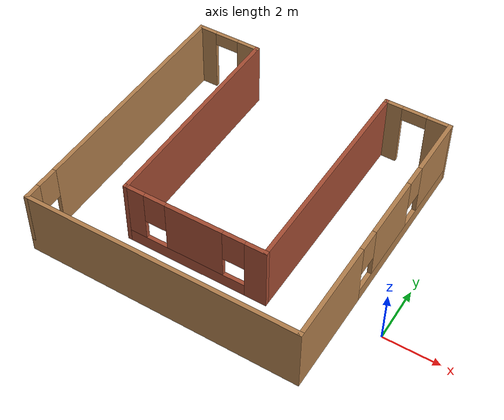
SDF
<?xml version='1.0'?>
<sdf version='1.6'>
  <model name='mybuilding'>
    <pose frame=''>-6.26715 2.10323 0 0 -0 0</pose>
    <link name='Wall_100'>
      <collision name='Wall_100_Collision'>
        <geometry>
          <box>
            <size>8 0.15 2.5</size>
          </box>
        </geometry>
        <pose frame=''>0 0 1.25 0 -0 0</pose>
      </collision>
      <visual name='Wall_100_Visual'>
        <pose frame=''>0 0 1.25 0 -0 0</pose>
        <geometry>
          <box>
            <size>8 0.15 2.5</size>
          </box>
        </geometry>
        <material>
          <script>
            <uri>file://media/materials/scripts/gazebo.material</uri>
            <name>Gazebo/Bricks</name>
          </script>
          <ambient>1 1 1 1</ambient>
        </material>
        <meta>
          <layer>0</layer>
        </meta>
      </visual>
      <pose frame=''>2.575 1 0 0 -0 -1.5708</pose>
    </link>
    <link name='Wall_101'>
      <pose frame=''>0 -2.925 0 0 -0 3.14159</pose>
      <visual name='Wall_101_Visual_0'>
        <pose frame=''>-2.25045 0 1.25 0 -0 0</pose>
        <geometry>
          <box>
            <size>0.799108 0.15 2.5</size>
          </box>
        </geometry>
        <material>
          <script>
            <uri>file://media/materials/scripts/gazebo.material</uri>
            <name>Gazebo/Bricks</name>
          </script>
          <ambient>1 1 1 1</ambient>
        </material>
        <meta>
          <layer>0</layer>
        </meta>
      </visual>
      <collision name='Wall_101_Collision_0'>
        <geometry>
          <box>
            <size>0.799108 0.15 2.5</size>
          </box>
        </geometry>
        <pose frame=''>-2.25045 0 1.25 0 -0 0</pose>
      </collision>
      <visual name='Wall_101_Visual_1'>
        <pose frame=''>0.399554 0 0.25 0 -0 0</pose>
        <geometry>
          <box>
            <size>4.50089 0.15 0.5</size>
          </box>
        </geometry>
        <material>
          <script>
            <uri>file://media/materials/scripts/gazebo.material</uri>
            <name>Gazebo/Bricks</name>
          </script>
          <ambient>1 1 1 1</ambient>
        </material>
        <meta>
          <layer>0</layer>
        </meta>
      </visual>
      <collision name='Wall_101_Collision_1'>
        <geometry>
          <box>
            <size>4.50089 0.15 0.5</size>
          </box>
        </geometry>
        <pose frame=''>0.399554 0 0.25 0 -0 0</pose>
      </collision>
      <visual name='Wall_101_Visual_2'>
        <pose frame=''>0.007743 0 1.5 0 -0 0</pose>
        <geometry>
          <box>
            <size>2.11727 0.15 2</size>
          </box>
        </geometry>
        <material>
          <script>
            <uri>file://media/materials/scripts/gazebo.material</uri>
            <name>Gazebo/Bricks</name>
          </script>
          <ambient>1 1 1 1</ambient>
        </material>
        <meta>
          <layer>0</layer>
        </meta>
      </visual>
      <collision name='Wall_101_Collision_2'>
        <geometry>
          <box>
            <size>2.11727 0.15 2</size>
          </box>
        </geometry>
        <pose frame=''>0.007743 0 1.5 0 -0 0</pose>
      </collision>
      <visual name='Wall_101_Visual_3'>
        <pose frame=''>2.25819 0 1.5 0 -0 0</pose>
        <geometry>
          <box>
            <size>0.783621 0.15 2</size>
          </box>
        </geometry>
        <material>
          <script>
            <uri>file://media/materials/scripts/gazebo.material</uri>
            <name>Gazebo/Bricks</name>
          </script>
          <ambient>1 1 1 1</ambient>
        </material>
        <meta>
          <layer>0</layer>
        </meta>
      </visual>
      <collision name='Wall_101_Collision_3'>
        <geometry>
          <box>
            <size>0.783621 0.15 2</size>
          </box>
        </geometry>
        <pose frame=''>2.25819 0 1.5 0 -0 0</pose>
      </collision>
      <visual name='Wall_101_Visual_4'>
        <pose frame=''>-1.45089 0 1.9 0 -0 0</pose>
        <geometry>
          <box>
            <size>0.8 0.15 1.2</size>
          </box>
        </geometry>
        <material>
          <script>
            <uri>file://media/materials/scripts/gazebo.material</uri>
            <name>Gazebo/Bricks</name>
          </script>
          <ambient>1 1 1 1</ambient>
        </material>
        <meta>
          <layer>0</layer>
        </meta>
      </visual>
      <collision name='Wall_101_Collision_4'>
        <geometry>
          <box>
            <size>0.8 0.15 1.2</size>
          </box>
        </geometry>
        <pose frame=''>-1.45089 0 1.9 0 -0 0</pose>
      </collision>
      <visual name='Wall_101_Visual_5'>
        <pose frame=''>1.46638 0 1.9 0 -0 0</pose>
        <geometry>
          <box>
            <size>0.8 0.15 1.2</size>
          </box>
        </geometry>
        <material>
          <script>
            <uri>file://media/materials/scripts/gazebo.material</uri>
            <name>Gazebo/Bricks</name>
          </script>
          <ambient>1 1 1 1</ambient>
        </material>
        <meta>
          <layer>0</layer>
        </meta>
      </visual>
      <collision name='Wall_101_Collision_5'>
        <geometry>
          <box>
            <size>0.8 0.15 1.2</size>
          </box>
        </geometry>
        <pose frame=''>1.46638 0 1.9 0 -0 0</pose>
      </collision>
    </link>
    <link name='Wall_92'>
      <pose frame=''>-4.925 0 0 0 -0 -1.5708</pose>
      <visual name='Wall_92_Visual_0'>
        <pose frame=''>-0.711405 0 1.25 0 -0 0</pose>
        <geometry>
          <box>
            <size>8.57719 0.15 2.5</size>
          </box>
        </geometry>
        <material>
          <script>
            <uri>file://media/materials/scripts/gazebo.material</uri>
            <name>Gazebo/Wood</name>
          </script>
          <ambient>1 1 1 1</ambient>
        </material>
        <meta>
          <layer>0</layer>
        </meta>
      </visual>
      <collision name='Wall_92_Collision_0'>
        <geometry>
          <box>
            <size>8.57719 0.15 2.5</size>
          </box>
        </geometry>
        <pose frame=''>-0.711405 0 1.25 0 -0 0</pose>
      </collision>
      <visual name='Wall_92_Visual_1'>
        <pose frame=''>4.28859 0 0.25 0 -0 0</pose>
        <geometry>
          <box>
            <size>1.42281 0.15 0.5</size>
          </box>
        </geometry>
        <material>
          <script>
            <uri>file://media/materials/scripts/gazebo.material</uri>
            <name>Gazebo/Wood</name>
          </script>
          <ambient>1 1 1 1</ambient>
        </material>
        <meta>
          <layer>0</layer>
        </meta>
      </visual>
      <collision name='Wall_92_Collision_1'>
        <geometry>
          <box>
            <size>1.42281 0.15 0.5</size>
          </box>
        </geometry>
        <pose frame=''>4.28859 0 0.25 0 -0 0</pose>
      </collision>
      <visual name='Wall_92_Visual_2'>
        <pose frame=''>4.6886 0 1.5 0 -0 0</pose>
        <geometry>
          <box>
            <size>0.622811 0.15 2</size>
          </box>
        </geometry>
        <material>
          <script>
            <uri>file://media/materials/scripts/gazebo.material</uri>
            <name>Gazebo/Wood</name>
          </script>
          <ambient>1 1 1 1</ambient>
        </material>
        <meta>
          <layer>0</layer>
        </meta>
      </visual>
      <collision name='Wall_92_Collision_2'>
        <geometry>
          <box>
            <size>0.622811 0.15 2</size>
          </box>
        </geometry>
        <pose frame=''>4.6886 0 1.5 0 -0 0</pose>
      </collision>
      <visual name='Wall_92_Visual_3'>
        <pose frame=''>3.97719 0 1.9 0 -0 0</pose>
        <geometry>
          <box>
            <size>0.8 0.15 1.2</size>
          </box>
        </geometry>
        <material>
          <script>
            <uri>file://media/materials/scripts/gazebo.material</uri>
            <name>Gazebo/Wood</name>
          </script>
          <ambient>1 1 1 1</ambient>
        </material>
        <meta>
          <layer>0</layer>
        </meta>
      </visual>
      <collision name='Wall_92_Collision_3'>
        <geometry>
          <box>
            <size>0.8 0.15 1.2</size>
          </box>
        </geometry>
        <pose frame=''>3.97719 0 1.9 0 -0 0</pose>
      </collision>
    </link>
    <link name='Wall_93'>
      <collision name='Wall_93_Collision'>
        <geometry>
          <box>
            <size>10 0.15 2.5</size>
          </box>
        </geometry>
        <pose frame=''>0 0 1.25 0 -0 0</pose>
      </collision>
      <visual name='Wall_93_Visual'>
        <pose frame=''>0 0 1.25 0 -0 0</pose>
        <geometry>
          <box>
            <size>10 0.15 2.5</size>
          </box>
        </geometry>
        <material>
          <script>
            <uri>file://media/materials/scripts/gazebo.material</uri>
            <name>Gazebo/Wood</name>
          </script>
          <ambient>1 1 1 1</ambient>
        </material>
        <meta>
          <layer>0</layer>
        </meta>
      </visual>
      <pose frame=''>0 -4.925 0 0 -0 0</pose>
    </link>
    <link name='Wall_95'>
      <pose frame=''>-3.75 4.925 0 0 -0 0</pose>
      <visual name='Wall_95_Visual_0'>
        <pose frame=''>-0.881113 0 1.25 0 -0 0</pose>
        <geometry>
          <box>
            <size>0.737774 0.15 2.5</size>
          </box>
        </geometry>
        <material>
          <script>
            <uri>file://media/materials/scripts/gazebo.material</uri>
            <name>Gazebo/Wood</name>
          </script>
          <ambient>1 1 1 1</ambient>
        </material>
        <meta>
          <layer>0</layer>
        </meta>
      </visual>
      <collision name='Wall_95_Collision_0'>
        <geometry>
          <box>
            <size>0.737774 0.15 2.5</size>
          </box>
        </geometry>
        <pose frame=''>-0.881113 0 1.25 0 -0 0</pose>
      </collision>
      <visual name='Wall_95_Visual_1'>
        <pose frame=''>0.818887 0 1.25 0 -0 0</pose>
        <geometry>
          <box>
            <size>0.862226 0.15 2.5</size>
          </box>
        </geometry>
        <material>
          <script>
            <uri>file://media/materials/scripts/gazebo.material</uri>
            <name>Gazebo/Wood</name>
          </script>
          <ambient>1 1 1 1</ambient>
        </material>
        <meta>
          <layer>0</layer>
        </meta>
      </visual>
      <collision name='Wall_95_Collision_1'>
        <geometry>
          <box>
            <size>0.862226 0.15 2.5</size>
          </box>
        </geometry>
        <pose frame=''>0.818887 0 1.25 0 -0 0</pose>
      </collision>
      <visual name='Wall_95_Visual_2'>
        <pose frame=''>-0.062226 0 2.25 0 -0 0</pose>
        <geometry>
          <box>
            <size>0.9 0.15 0.5</size>
          </box>
        </geometry>
        <material>
          <script>
            <uri>file://media/materials/scripts/gazebo.material</uri>
            <name>Gazebo/Wood</name>
          </script>
          <ambient>1 1 1 1</ambient>
        </material>
        <meta>
          <layer>0</layer>
        </meta>
      </visual>
      <collision name='Wall_95_Collision_2'>
        <geometry>
          <box>
            <size>0.9 0.15 0.5</size>
          </box>
        </geometry>
        <pose frame=''>-0.062226 0 2.25 0 -0 0</pose>
      </collision>
    </link>
    <link name='Wall_96'>
      <collision name='Wall_96_Collision'>
        <geometry>
          <box>
            <size>8 0.15 2.5</size>
          </box>
        </geometry>
        <pose frame=''>0 0 1.25 0 -0 0</pose>
      </collision>
      <visual name='Wall_96_Visual'>
        <pose frame=''>0 0 1.25 0 -0 0</pose>
        <geometry>
          <box>
            <size>8 0.15 2.5</size>
          </box>
        </geometry>
        <material>
          <script>
            <uri>file://media/materials/scripts/gazebo.material</uri>
            <name>Gazebo/Bricks</name>
          </script>
          <ambient>1 1 1 1</ambient>
        </material>
        <meta>
          <layer>0</layer>
        </meta>
      </visual>
      <pose frame=''>-2.575 1 0 0 -0 -1.5708</pose>
    </link>
    <link name='Wall_98'>
      <pose frame=''>4.925 0 0 0 -0 1.5708</pose>
      <visual name='Wall_98_Visual_0'>
        <pose frame=''>-3.13973 0 1.25 0 -0 0</pose>
        <geometry>
          <box>
            <size>3.72053 0.15 2.5</size>
          </box>
        </geometry>
        <material>
          <script>
            <uri>file://media/materials/scripts/gazebo.material</uri>
            <name>Gazebo/Wood</name>
          </script>
          <ambient>1 1 1 1</ambient>
        </material>
        <meta>
          <layer>0</layer>
        </meta>
      </visual>
      <collision name='Wall_98_Collision_0'>
        <geometry>
          <box>
            <size>3.72053 0.15 2.5</size>
          </box>
        </geometry>
        <pose frame=''>-3.13973 0 1.25 0 -0 0</pose>
      </collision>
      <visual name='Wall_98_Visual_1'>
        <pose frame=''>1.86027 0 0.25 0 -0 0</pose>
        <geometry>
          <box>
            <size>6.27947 0.15 0.5</size>
          </box>
        </geometry>
        <material>
          <script>
            <uri>file://media/materials/scripts/gazebo.material</uri>
            <name>Gazebo/Wood</name>
          </script>
          <ambient>1 1 1 1</ambient>
        </material>
        <meta>
          <layer>0</layer>
        </meta>
      </visual>
      <collision name='Wall_98_Collision_1'>
        <geometry>
          <box>
            <size>6.27947 0.15 0.5</size>
          </box>
        </geometry>
        <pose frame=''>1.86027 0 0.25 0 -0 0</pose>
      </collision>
      <visual name='Wall_98_Visual_2'>
        <pose frame=''>0.699468 0 1.5 0 -0 0</pose>
        <geometry>
          <box>
            <size>2.35787 0.15 2</size>
          </box>
        </geometry>
        <material>
          <script>
            <uri>file://media/materials/scripts/gazebo.material</uri>
            <name>Gazebo/Wood</name>
          </script>
          <ambient>1 1 1 1</ambient>
        </material>
        <meta>
          <layer>0</layer>
        </meta>
      </visual>
      <collision name='Wall_98_Collision_2'>
        <geometry>
          <box>
            <size>2.35787 0.15 2</size>
          </box>
        </geometry>
        <pose frame=''>0.699468 0 1.5 0 -0 0</pose>
      </collision>
      <visual name='Wall_98_Visual_3'>
        <pose frame=''>3.8392 0 1.5 0 -0 0</pose>
        <geometry>
          <box>
            <size>2.3216 0.15 2</size>
          </box>
        </geometry>
        <material>
          <script>
            <uri>file://media/materials/scripts/gazebo.material</uri>
            <name>Gazebo/Wood</name>
          </script>
          <ambient>1 1 1 1</ambient>
        </material>
        <meta>
          <layer>0</layer>
        </meta>
      </visual>
      <collision name='Wall_98_Collision_3'>
        <geometry>
          <box>
            <size>2.3216 0.15 2</size>
          </box>
        </geometry>
        <pose frame=''>3.8392 0 1.5 0 -0 0</pose>
      </collision>
      <visual name='Wall_98_Visual_4'>
        <pose frame=''>-0.879468 0 1.9 0 -0 0</pose>
        <geometry>
          <box>
            <size>0.8 0.15 1.2</size>
          </box>
        </geometry>
        <material>
          <script>
            <uri>file://media/materials/scripts/gazebo.material</uri>
            <name>Gazebo/Wood</name>
          </script>
          <ambient>1 1 1 1</ambient>
        </material>
        <meta>
          <layer>0</layer>
        </meta>
      </visual>
      <collision name='Wall_98_Collision_4'>
        <geometry>
          <box>
            <size>0.8 0.15 1.2</size>
          </box>
        </geometry>
        <pose frame=''>-0.879468 0 1.9 0 -0 0</pose>
      </collision>
      <visual name='Wall_98_Visual_5'>
        <pose frame=''>2.2784 0 1.9 0 -0 0</pose>
        <geometry>
          <box>
            <size>0.8 0.15 1.2</size>
          </box>
        </geometry>
        <material>
          <script>
            <uri>file://media/materials/scripts/gazebo.material</uri>
            <name>Gazebo/Wood</name>
          </script>
          <ambient>1 1 1 1</ambient>
        </material>
        <meta>
          <layer>0</layer>
        </meta>
      </visual>
      <collision name='Wall_98_Collision_5'>
        <geometry>
          <box>
            <size>0.8 0.15 1.2</size>
          </box>
        </geometry>
        <pose frame=''>2.2784 0 1.9 0 -0 0</pose>
      </collision>
    </link>
    <link name='Wall_99'>
      <pose frame=''>3.75 4.925 0 0 -0 3.14159</pose>
      <visual name='Wall_99_Visual_0'>
        <pose frame=''>-0.798182 0 1.25 0 -0 0</pose>
        <geometry>
          <box>
            <size>0.903636 0.15 2.5</size>
          </box>
        </geometry>
        <material>
          <script>
            <uri>file://media/materials/scripts/gazebo.material</uri>
            <name>Gazebo/Wood</name>
          </script>
          <ambient>1 1 1 1</ambient>
        </material>
        <meta>
          <layer>0</layer>
        </meta>
      </visual>
      <collision name='Wall_99_Collision_0'>
        <geometry>
          <box>
            <size>0.903636 0.15 2.5</size>
          </box>
        </geometry>
        <pose frame=''>-0.798182 0 1.25 0 -0 0</pose>
      </collision>
      <visual name='Wall_99_Visual_1'>
        <pose frame=''>0.901818 0 1.25 0 -0 0</pose>
        <geometry>
          <box>
            <size>0.696364 0.15 2.5</size>
          </box>
        </geometry>
        <material>
          <script>
            <uri>file://media/materials/scripts/gazebo.material</uri>
            <name>Gazebo/Wood</name>
          </script>
          <ambient>1 1 1 1</ambient>
        </material>
        <meta>
          <layer>0</layer>
        </meta>
      </visual>
      <collision name='Wall_99_Collision_1'>
        <geometry>
          <box>
            <size>0.696364 0.15 2.5</size>
          </box>
        </geometry>
        <pose frame=''>0.901818 0 1.25 0 -0 0</pose>
      </collision>
      <visual name='Wall_99_Visual_2'>
        <pose frame=''>0.103636 0 2.25 0 -0 0</pose>
        <geometry>
          <box>
            <size>0.9 0.15 0.5</size>
          </box>
        </geometry>
        <material>
          <script>
            <uri>file://media/materials/scripts/gazebo.material</uri>
            <name>Gazebo/Wood</name>
          </script>
          <ambient>1 1 1 1</ambient>
        </material>
        <meta>
          <layer>0</layer>
        </meta>
      </visual>
      <collision name='Wall_99_Collision_2'>
        <geometry>
          <box>
            <size>0.9 0.15 0.5</size>
          </box>
        </geometry>
        <pose frame=''>0.103636 0 2.25 0 -0 0</pose>
      </collision>
    </link>
    <static>1</static>
  </model>
</sdf>
